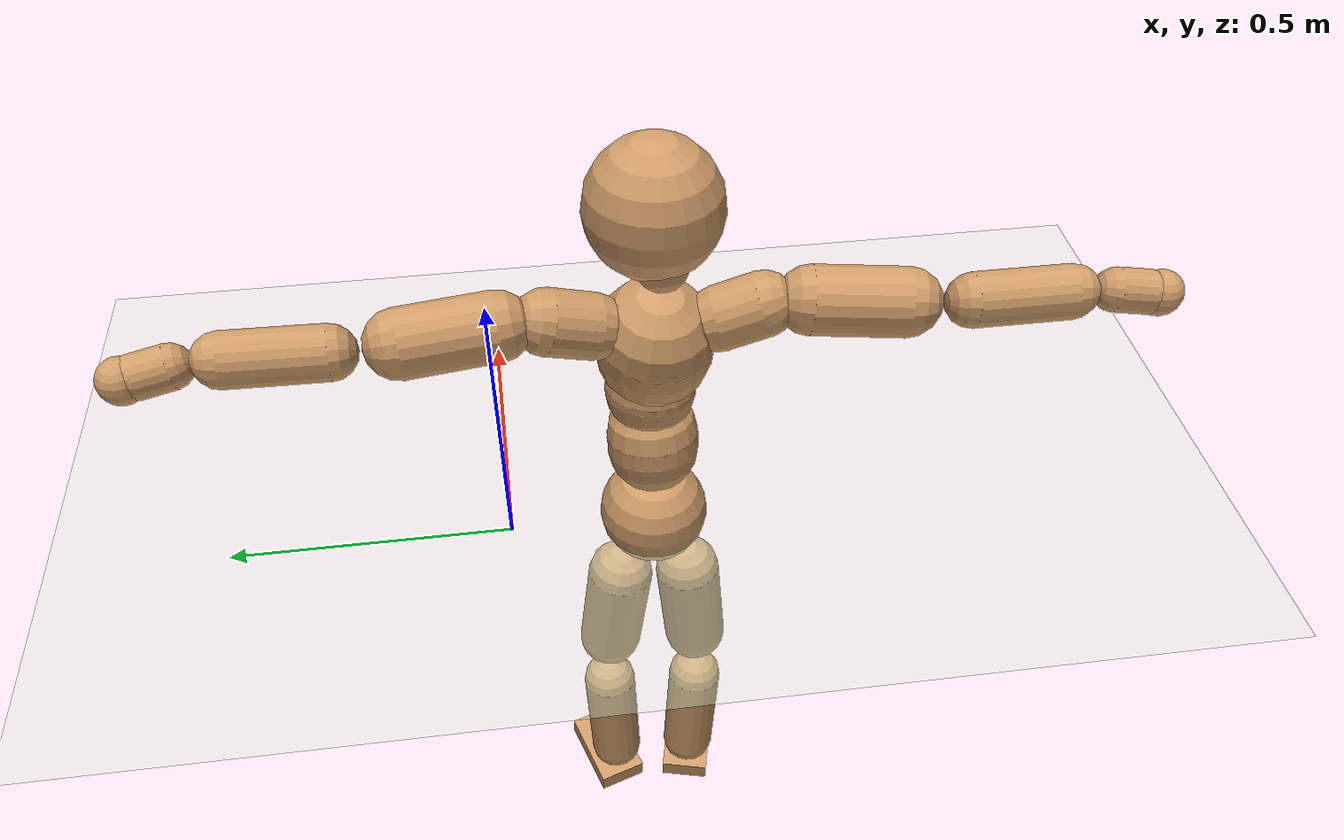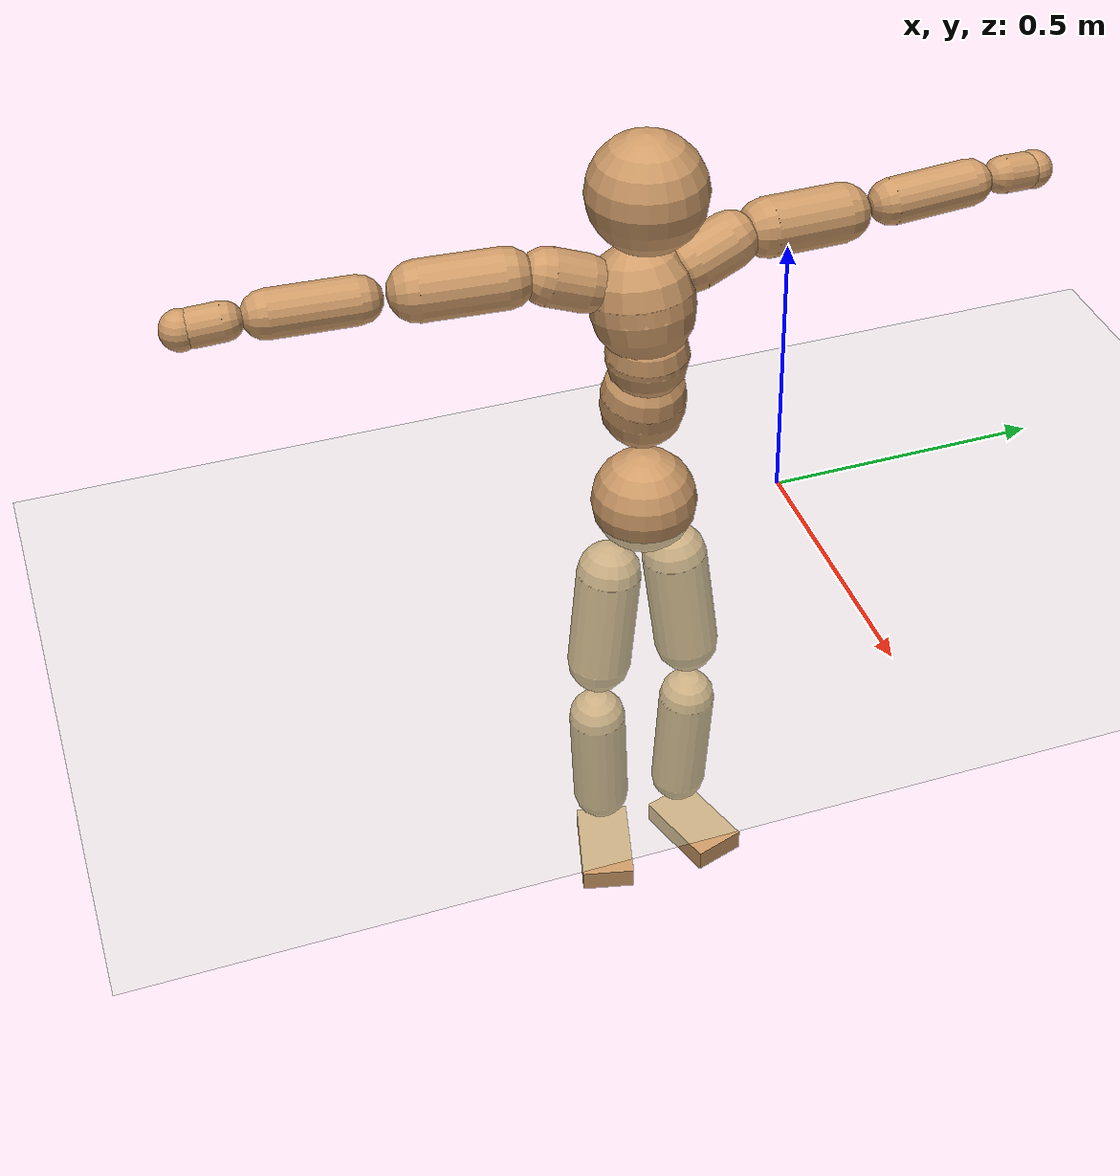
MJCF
<mujoco model="humanoid">
  <compiler coordinate="local"/>
  <default>
    <joint damping="0.0" armature="0.01" stiffness="0.0" limited="true"/>
    <geom conaffinity="1" condim="3" contype="7" margin="0.001" rgba="0.8 0.6 .4 1"/>
  </default>
  <asset>
    <texture type="skybox" builtin="gradient" rgb1=".4 .5 .6" rgb2="0 0 0" width="100" height="100"/>
    <texture builtin="flat" height="1278" mark="cross" markrgb="1 1 1" name="texgeom" random="0.01" rgb1="0.8 0.6 0.4" rgb2="0.8 0.6 0.4" type="cube" width="127"/>
    <texture builtin="checker" height="100" name="texplane" rgb1="0 0 0" rgb2="0.8 0.8 0.8" type="2d" width="100"/>
    <material name="MatPlane" reflectance="0.5" shininess="1" specular="1" texrepeat="60 60" texture="texplane"/>
    <material name="geom" texture="texgeom" texuniform="true"/>
  </asset>
  <worldbody>
    <light cutoff="100" diffuse="1 1 1" dir="-0 0 -1.3" directional="true" exponent="1" pos="0 0 1.3" specular=".1 .1 .1"/>
    <geom conaffinity="1" condim="3" name="floor" pos="0 0 0" rgba="0.8 0.9 0.8 1" size="100 100 .2" type="plane" material="MatPlane"/>
    <body name="Pelvis" pos="-0.0047 -0.2564 0.0272">
      <freejoint name="Pelvis"/>
      <geom type="sphere" contype="1" conaffinity="1" density="500" size="0.0960" pos="0.0000 0.0000 0.0000" name="Pelvis"/>
      <body name="L_Hip" pos="-0.0164 0.0557 -0.0825">
        <joint name="L_Hip_x" type="hinge" pos="0 0 0" axis="1 0 0" stiffness="800" damping="80" armature="0.02" range="-180.0000 180.0000"/>
        <joint name="L_Hip_y" type="hinge" pos="0 0 0" axis="0 1 0" stiffness="800" damping="80" armature="0.02" range="-180.0000 180.0000"/>
        <joint name="L_Hip_z" type="hinge" pos="0 0 0" axis="0 0 1" stiffness="800" damping="80" armature="0.02" range="-180.0000 180.0000"/>
        <geom type="capsule" contype="1" conaffinity="1" density="500" fromto="0.0025 0.0076 -0.0714 0.0099 0.0304 -0.2854" size="0.0603" name="L_Hip"/>
        <body name="L_Knee" pos="0.0123 0.038 -0.3568">
          <joint name="L_Knee_x" type="hinge" pos="0 0 0" axis="1 0 0" stiffness="800" damping="80" armature="0.02" range="-180.0000 180.0000"/>
          <joint name="L_Knee_y" type="hinge" pos="0 0 0" axis="0 1 0" stiffness="800" damping="80" armature="0.02" range="-180.0000 180.0000"/>
          <joint name="L_Knee_z" type="hinge" pos="0 0 0" axis="0 0 1" stiffness="800" damping="80" armature="0.02" range="-180.0000 180.0000"/>
          <geom type="capsule" contype="1" conaffinity="1" density="500" fromto="-0.0072 -0.0029 -0.0782 -0.0290 -0.0115 -0.3126" size="0.0534" name="L_Knee"/>
          <body name="L_Ankle" pos="-0.0362 -0.0144 -0.3908">
            <joint name="L_Ankle_x" type="hinge" pos="0 0 0" axis="1 0 0" stiffness="800" damping="80" armature="0.02" range="-180.0000 180.0000"/>
            <joint name="L_Ankle_y" type="hinge" pos="0 0 0" axis="0 1 0" stiffness="800" damping="80" armature="0.02" range="-180.0000 180.0000"/>
            <joint name="L_Ankle_z" type="hinge" pos="0 0 0" axis="0 0 1" stiffness="800" damping="80" armature="0.02" range="-180.0000 180.0000"/>
            <geom type="box" contype="1" conaffinity="1" density="500" pos="0.0590 0.0188 -0.0284" size="0.0863 0.0501 0.0211" quat="0.9881 0.0000 0.0000 0.1539" name="L_Ankle"/>
            <body name="L_Toe" pos="0.1181 0.0377 -0.0569">
              <joint name="L_Toe_x" type="hinge" pos="0 0 0" axis="1 0 0" stiffness="500" damping="50" armature="0.02" range="-180.0000 180.0000"/>
              <joint name="L_Toe_y" type="hinge" pos="0 0 0" axis="0 1 0" stiffness="500" damping="50" armature="0.02" range="-180.0000 180.0000"/>
              <joint name="L_Toe_z" type="hinge" pos="0 0 0" axis="0 0 1" stiffness="500" damping="50" armature="0.02" range="-180.0000 180.0000"/>
              <geom type="box" contype="1" conaffinity="1" density="500" pos="0.0000 0.0000 0.0274" size="0.0011 0.0025 0.001" quat="0.9873 0.0000 0.0000 0.1589" name="L_Toe"/>
            </body>
          </body>
        </body>
      </body>
      <body name="R_Hip" pos="-0.0113 -0.0571 -0.0912">
        <joint name="R_Hip_x" type="hinge" pos="0 0 0" axis="1 0 0" stiffness="800" damping="80" armature="0.02" range="-180.0000 180.0000"/>
        <joint name="R_Hip_y" type="hinge" pos="0 0 0" axis="0 1 0" stiffness="800" damping="80" armature="0.02" range="-180.0000 180.0000"/>
        <joint name="R_Hip_z" type="hinge" pos="0 0 0" axis="0 0 1" stiffness="800" damping="80" armature="0.02" range="-180.0000 180.0000"/>
        <geom type="capsule" contype="1" conaffinity="1" density="500" fromto="-0.0001 -0.0075 -0.0706 -0.0005 -0.0299 -0.2824" size="0.0597" name="R_Hip"/>
        <body name="R_Knee" pos="-0.0006 -0.0374 -0.353">
          <joint name="R_Knee_x" type="hinge" pos="0 0 0" axis="1 0 0" stiffness="800" damping="80" armature="0.02" range="-180.0000 180.0000"/>
          <joint name="R_Knee_y" type="hinge" pos="0 0 0" axis="0 1 0" stiffness="800" damping="80" armature="0.02" range="-180.0000 180.0000"/>
          <joint name="R_Knee_z" type="hinge" pos="0 0 0" axis="0 0 1" stiffness="800" damping="80" armature="0.02" range="-180.0000 180.0000"/>
          <geom type="capsule" contype="1" conaffinity="1" density="500" fromto="-0.0069 0.0036 -0.0766 -0.0274 0.0145 -0.3065" size="0.0538" name="R_Knee"/>
          <body name="R_Ankle" pos="-0.0343 0.0182 -0.3831">
            <joint name="R_Ankle_x" type="hinge" pos="0 0 0" axis="1 0 0" stiffness="800" damping="80" armature="0.02" range="-180.0000 180.0000"/>
            <joint name="R_Ankle_y" type="hinge" pos="0 0 0" axis="0 1 0" stiffness="800" damping="80" armature="0.02" range="-180.0000 180.0000"/>
            <joint name="R_Ankle_z" type="hinge" pos="0 0 0" axis="0 0 1" stiffness="800" damping="80" armature="0.02" range="-180.0000 180.0000"/>
            <geom type="box" contype="1" conaffinity="1" density="500" pos="0.0636 -0.0156 -0.0279" size="0.0886 0.0501 0.0208" quat="0.9928 0.0000 0.0000 -0.1199" name="R_Ankle"/>
            <body name="R_Toe" pos="0.1273 -0.0312 -0.0558">
              <joint name="R_Toe_x" type="hinge" pos="0 0 0" axis="1 0 0" stiffness="500" damping="50" armature="0.02" range="-180.0000 180.0000"/>
              <joint name="R_Toe_y" type="hinge" pos="0 0 0" axis="0 1 0" stiffness="500" damping="50" armature="0.02" range="-180.0000 180.0000"/>
              <joint name="R_Toe_z" type="hinge" pos="0 0 0" axis="0 0 1" stiffness="500" damping="50" armature="0.02" range="-180.0000 180.0000"/>
              <geom type="box" contype="1" conaffinity="1" density="500" pos="0.0000 0.0000 0.0290" size="0.001 0.0025 0.0011" quat="0.9938 0.0000 0.0000 -0.1108" name="R_Toe"/>
            </body>
          </body>
        </body>
      </body>
      <body name="Torso" pos="-0.0382 0.004 0.127">
        <joint name="Torso_x" type="hinge" pos="0 0 0" axis="1 0 0" stiffness="1000" damping="100" armature="0.02" range="-180.0000 180.0000"/>
        <joint name="Torso_y" type="hinge" pos="0 0 0" axis="0 1 0" stiffness="1000" damping="100" armature="0.02" range="-180.0000 180.0000"/>
        <joint name="Torso_z" type="hinge" pos="0 0 0" axis="0 0 1" stiffness="1000" damping="100" armature="0.02" range="-180.0000 180.0000"/>
        <geom type="capsule" contype="1" conaffinity="1" density="500" fromto="0.0168 0.0037 0.0882 0.0112 0.0025 0.0588" size="0.075888" name="Torso"/>
        <body name="Spine" pos="0.0281 0.0062 0.147">
          <joint name="Spine_x" type="hinge" pos="0 0 0" axis="1 0 0" stiffness="1000" damping="100" armature="0.02" range="-180.0000 180.0000"/>
          <joint name="Spine_y" type="hinge" pos="0 0 0" axis="0 1 0" stiffness="1000" damping="100" armature="0.02" range="-180.0000 180.0000"/>
          <joint name="Spine_z" type="hinge" pos="0 0 0" axis="0 0 1" stiffness="1000" damping="100" armature="0.02" range="-180.0000 180.0000"/>
          <geom type="capsule" contype="1" conaffinity="1" density="500" fromto="0.0024 -0.0009 0.0359 0.0016 -0.0006 0.0239" size="0.07347" name="Spine"/>
          <body name="Chest" pos="0.004 -0.0015 0.0598">
            <joint name="Chest_x" type="hinge" pos="0 0 0" axis="1 0 0" stiffness="1000" damping="100" armature="0.02" range="-180.0000 180.0000"/>
            <joint name="Chest_y" type="hinge" pos="0 0 0" axis="0 1 0" stiffness="1000" damping="100" armature="0.02" range="-180.0000 180.0000"/>
            <joint name="Chest_z" type="hinge" pos="0 0 0" axis="0 0 1" stiffness="1000" damping="100" armature="0.02" range="-180.0000 180.0000"/>
            <geom type="capsule" contype="1" conaffinity="1" density="500" fromto="-0.0170 -0.0046 0.0855 -0.0114 -0.0031 0.0570" size="0.091791" name="Chest"/>
            <body name="Neck" pos="-0.037 -0.0128 0.2067">
              <joint name="Neck_x" type="hinge" pos="0 0 0" axis="1 0 0" stiffness="500" damping="50" armature="0.02" range="-180.0000 180.0000"/>
              <joint name="Neck_y" type="hinge" pos="0 0 0" axis="0 1 0" stiffness="500" damping="50" armature="0.02" range="-180.0000 180.0000"/>
              <joint name="Neck_z" type="hinge" pos="0 0 0" axis="0 0 1" stiffness="500" damping="50" armature="0.02" range="-180.0000 180.0000"/>
              <geom type="capsule" contype="1" conaffinity="1" density="500" fromto="0.0096 0.0019 0.0171 0.0386 0.0075 0.0684" size="0.041571" name="Neck"/>
              <body name="Head" pos="0.0482 0.0094 0.0855">
                <joint name="Head_x" type="hinge" pos="0 0 0" axis="1 0 0" stiffness="500" damping="50" armature="0.02" range="-180.0000 180.0000"/>
                <joint name="Head_y" type="hinge" pos="0 0 0" axis="0 1 0" stiffness="500" damping="50" armature="0.02" range="-180.0000 180.0000"/>
                <joint name="Head_z" type="hinge" pos="0 0 0" axis="0 0 1" stiffness="500" damping="50" armature="0.02" range="-180.0000 180.0000"/>
                <geom type="sphere" contype="1" conaffinity="1" density="500" size="0.1037" pos="0.0000 0.0000 0.0000" name="Head"/>
              </body>
            </body>
            <body name="L_Thorax" pos="-0.0217 0.0667 0.1115">
              <joint name="L_Thorax_x" type="hinge" pos="0 0 0" axis="1 0 0" stiffness="500" damping="50" armature="0.02" range="-180.0000 180.0000"/>
              <joint name="L_Thorax_y" type="hinge" pos="0 0 0" axis="0 1 0" stiffness="500" damping="50" armature="0.02" range="-180.0000 180.0000"/>
              <joint name="L_Thorax_z" type="hinge" pos="0 0 0" axis="0 0 1" stiffness="500" damping="50" armature="0.02" range="-180.0000 180.0000"/>
              <geom type="capsule" contype="1" conaffinity="1" density="500" fromto="-0.0036 0.0235 0.0080 -0.0143 0.0941 0.0322" size="0.0508" name="L_Thorax"/>
              <body name="L_Shoulder" pos="-0.0179 0.1176 0.0402">
                <joint name="L_Shoulder_x" type="hinge" pos="0 0 0" axis="1 0 0" stiffness="500" damping="50" armature="0.02" range="-720.0000 720.0000"/>
                <joint name="L_Shoulder_y" type="hinge" pos="0 0 0" axis="0 1 0" stiffness="500" damping="50" armature="0.02" range="-720.0000 720.0000"/>
                <joint name="L_Shoulder_z" type="hinge" pos="0 0 0" axis="0 0 1" stiffness="500" damping="50" armature="0.02" range="-720.0000 720.0000"/>
                <geom type="capsule" contype="1" conaffinity="1" density="500" fromto="-0.0043 0.0471 -0.0022 -0.0170 0.1882 -0.0088" size="0.053" name="L_Shoulder"/>
                <body name="L_Elbow" pos="-0.0213 0.2353 -0.011">
                  <joint name="L_Elbow_x" type="hinge" pos="0 0 0" axis="1 0 0" stiffness="500" damping="50" armature="0.02" range="-720.0000 720.0000"/>
                  <joint name="L_Elbow_y" type="hinge" pos="0 0 0" axis="0 1 0" stiffness="500" damping="50" armature="0.02" range="-720.0000 720.0000"/>
                  <joint name="L_Elbow_z" type="hinge" pos="0 0 0" axis="0 0 1" stiffness="500" damping="50" armature="0.02" range="-720.0000 720.0000"/>
                  <geom type="capsule" contype="1" conaffinity="1" density="500" fromto="-0.0016 0.0500 0.0022 -0.0063 0.1999 0.0087" size="0.0417" name="L_Elbow"/>
                  <body name="L_Wrist" pos="-0.0079 0.2499 0.0109">
                    <joint name="L_Wrist_x" type="hinge" pos="0 0 0" axis="1 0 0" stiffness="300" damping="30" armature="0.02" range="-180.0000 180.0000"/>
                    <joint name="L_Wrist_y" type="hinge" pos="0 0 0" axis="0 1 0" stiffness="300" damping="30" armature="0.02" range="-180.0000 180.0000"/>
                    <joint name="L_Wrist_z" type="hinge" pos="0 0 0" axis="0 0 1" stiffness="300" damping="30" armature="0.02" range="-180.0000 180.0000"/>
                    <geom type="capsule" contype="1" conaffinity="1" density="500" fromto="-0.0030 0.0169 -0.0021 -0.0120 0.0677 -0.0083" size="0.0336" name="L_Wrist"/>
                    <body name="L_Hand" pos="-0.0151 0.0847 -0.0103">
                      <joint name="L_Hand_x" type="hinge" pos="0 0 0" axis="1 0 0" stiffness="300" damping="30" armature="0.02" range="-180.0000 180.0000"/>
                      <joint name="L_Hand_y" type="hinge" pos="0 0 0" axis="0 1 0" stiffness="300" damping="30" armature="0.02" range="-180.0000 180.0000"/>
                      <joint name="L_Hand_z" type="hinge" pos="0 0 0" axis="0 0 1" stiffness="300" damping="30" armature="0.02" range="-180.0000 180.0000"/>
                      <geom type="sphere" contype="1" conaffinity="1" density="500" size="0.0348" pos="0.0000 0.0000 0.0000" name="L_Hand"/>
                    </body>
                  </body>
                </body>
              </body>
            </body>
            <body name="R_Thorax" pos="-0.0265 -0.0772 0.1091">
              <joint name="R_Thorax_x" type="hinge" pos="0 0 0" axis="1 0 0" stiffness="500" damping="50" armature="0.02" range="-180.0000 180.0000"/>
              <joint name="R_Thorax_y" type="hinge" pos="0 0 0" axis="0 1 0" stiffness="500" damping="50" armature="0.02" range="-180.0000 180.0000"/>
              <joint name="R_Thorax_z" type="hinge" pos="0 0 0" axis="0 0 1" stiffness="500" damping="50" armature="0.02" range="-180.0000 180.0000"/>
              <geom type="capsule" contype="1" conaffinity="1" density="500" fromto="-0.0016 -0.0214 0.0080 -0.0064 -0.0857 0.0319" size="0.0505" name="R_Thorax"/>
              <body name="R_Shoulder" pos="-0.008 -0.1072 0.0399">
                <joint name="R_Shoulder_x" type="hinge" pos="0 0 0" axis="1 0 0" stiffness="500" damping="50" armature="0.02" range="-720.0000 720.0000"/>
                <joint name="R_Shoulder_y" type="hinge" pos="0 0 0" axis="0 1 0" stiffness="500" damping="50" armature="0.02" range="-720.0000 720.0000"/>
                <joint name="R_Shoulder_z" type="hinge" pos="0 0 0" axis="0 0 1" stiffness="500" damping="50" armature="0.02" range="-720.0000 720.0000"/>
                <geom type="capsule" contype="1" conaffinity="1" density="500" fromto="-0.0060 -0.0476 -0.0016 -0.0239 -0.1905 -0.0065" size="0.053" name="R_Shoulder"/>
                <body name="R_Elbow" pos="-0.0299 -0.2382 -0.0081">
                  <joint name="R_Elbow_x" type="hinge" pos="0 0 0" axis="1 0 0" stiffness="500" damping="50" armature="0.02" range="-720.0000 720.0000"/>
                  <joint name="R_Elbow_y" type="hinge" pos="0 0 0" axis="0 1 0" stiffness="500" damping="50" armature="0.02" range="-720.0000 720.0000"/>
                  <joint name="R_Elbow_z" type="hinge" pos="0 0 0" axis="0 0 1" stiffness="500" damping="50" armature="0.02" range="-720.0000 720.0000"/>
                  <geom type="capsule" contype="1" conaffinity="1" density="500" fromto="-0.0012 -0.0502 0.0011 -0.0047 -0.2009 0.0044" size="0.0419" name="R_Elbow"/>
                  <body name="R_Wrist" pos="-0.0059 -0.2511 0.0055">
                    <joint name="R_Wrist_x" type="hinge" pos="0 0 0" axis="1 0 0" stiffness="300" damping="30" armature="0.02" range="-180.0000 180.0000"/>
                    <joint name="R_Wrist_y" type="hinge" pos="0 0 0" axis="0 1 0" stiffness="300" damping="30" armature="0.02" range="-180.0000 180.0000"/>
                    <joint name="R_Wrist_z" type="hinge" pos="0 0 0" axis="0 0 1" stiffness="300" damping="30" armature="0.02" range="-180.0000 180.0000"/>
                    <geom type="capsule" contype="1" conaffinity="1" density="500" fromto="-0.0019 -0.0172 -0.0017 -0.0077 -0.0688 -0.0067" size="0.0339" name="R_Wrist"/>
                    <body name="R_Hand" pos="-0.0096 -0.086 -0.0083">
                      <joint name="R_Hand_x" type="hinge" pos="0 0 0" axis="1 0 0" stiffness="300" damping="30" armature="0.02" range="-180.0000 180.0000"/>
                      <joint name="R_Hand_y" type="hinge" pos="0 0 0" axis="0 1 0" stiffness="300" damping="30" armature="0.02" range="-180.0000 180.0000"/>
                      <joint name="R_Hand_z" type="hinge" pos="0 0 0" axis="0 0 1" stiffness="300" damping="30" armature="0.02" range="-180.0000 180.0000"/>
                      <geom type="sphere" contype="1" conaffinity="1" density="500" size="0.0350" pos="0.0000 0.0000 0.0000" name="R_Hand"/>
                    </body>
                  </body>
                </body>
              </body>
            </body>
          </body>
        </body>
      </body>
    </body>
  </worldbody>
  <actuator>
    <motor name="L_Hip_x" joint="L_Hip_x" gear="500"/>
    <motor name="L_Hip_y" joint="L_Hip_y" gear="500"/>
    <motor name="L_Hip_z" joint="L_Hip_z" gear="500"/>
    <motor name="L_Knee_x" joint="L_Knee_x" gear="500"/>
    <motor name="L_Knee_y" joint="L_Knee_y" gear="500"/>
    <motor name="L_Knee_z" joint="L_Knee_z" gear="500"/>
    <motor name="L_Ankle_x" joint="L_Ankle_x" gear="500"/>
    <motor name="L_Ankle_y" joint="L_Ankle_y" gear="500"/>
    <motor name="L_Ankle_z" joint="L_Ankle_z" gear="500"/>
    <motor name="L_Toe_x" joint="L_Toe_x" gear="500"/>
    <motor name="L_Toe_y" joint="L_Toe_y" gear="500"/>
    <motor name="L_Toe_z" joint="L_Toe_z" gear="500"/>
    <motor name="R_Hip_x" joint="R_Hip_x" gear="500"/>
    <motor name="R_Hip_y" joint="R_Hip_y" gear="500"/>
    <motor name="R_Hip_z" joint="R_Hip_z" gear="500"/>
    <motor name="R_Knee_x" joint="R_Knee_x" gear="500"/>
    <motor name="R_Knee_y" joint="R_Knee_y" gear="500"/>
    <motor name="R_Knee_z" joint="R_Knee_z" gear="500"/>
    <motor name="R_Ankle_x" joint="R_Ankle_x" gear="500"/>
    <motor name="R_Ankle_y" joint="R_Ankle_y" gear="500"/>
    <motor name="R_Ankle_z" joint="R_Ankle_z" gear="500"/>
    <motor name="R_Toe_x" joint="R_Toe_x" gear="500"/>
    <motor name="R_Toe_y" joint="R_Toe_y" gear="500"/>
    <motor name="R_Toe_z" joint="R_Toe_z" gear="500"/>
    <motor name="Torso_x" joint="Torso_x" gear="500"/>
    <motor name="Torso_y" joint="Torso_y" gear="500"/>
    <motor name="Torso_z" joint="Torso_z" gear="500"/>
    <motor name="Spine_x" joint="Spine_x" gear="500"/>
    <motor name="Spine_y" joint="Spine_y" gear="500"/>
    <motor name="Spine_z" joint="Spine_z" gear="500"/>
    <motor name="Chest_x" joint="Chest_x" gear="500"/>
    <motor name="Chest_y" joint="Chest_y" gear="500"/>
    <motor name="Chest_z" joint="Chest_z" gear="500"/>
    <motor name="Neck_x" joint="Neck_x" gear="500"/>
    <motor name="Neck_y" joint="Neck_y" gear="500"/>
    <motor name="Neck_z" joint="Neck_z" gear="500"/>
    <motor name="Head_x" joint="Head_x" gear="500"/>
    <motor name="Head_y" joint="Head_y" gear="500"/>
    <motor name="Head_z" joint="Head_z" gear="500"/>
    <motor name="L_Thorax_x" joint="L_Thorax_x" gear="500"/>
    <motor name="L_Thorax_y" joint="L_Thorax_y" gear="500"/>
    <motor name="L_Thorax_z" joint="L_Thorax_z" gear="500"/>
    <motor name="L_Shoulder_x" joint="L_Shoulder_x" gear="500"/>
    <motor name="L_Shoulder_y" joint="L_Shoulder_y" gear="500"/>
    <motor name="L_Shoulder_z" joint="L_Shoulder_z" gear="500"/>
    <motor name="L_Elbow_x" joint="L_Elbow_x" gear="500"/>
    <motor name="L_Elbow_y" joint="L_Elbow_y" gear="500"/>
    <motor name="L_Elbow_z" joint="L_Elbow_z" gear="500"/>
    <motor name="L_Wrist_x" joint="L_Wrist_x" gear="500"/>
    <motor name="L_Wrist_y" joint="L_Wrist_y" gear="500"/>
    <motor name="L_Wrist_z" joint="L_Wrist_z" gear="500"/>
    <motor name="L_Hand_x" joint="L_Hand_x" gear="500"/>
    <motor name="L_Hand_y" joint="L_Hand_y" gear="500"/>
    <motor name="L_Hand_z" joint="L_Hand_z" gear="500"/>
    <motor name="R_Thorax_x" joint="R_Thorax_x" gear="500"/>
    <motor name="R_Thorax_y" joint="R_Thorax_y" gear="500"/>
    <motor name="R_Thorax_z" joint="R_Thorax_z" gear="500"/>
    <motor name="R_Shoulder_x" joint="R_Shoulder_x" gear="500"/>
    <motor name="R_Shoulder_y" joint="R_Shoulder_y" gear="500"/>
    <motor name="R_Shoulder_z" joint="R_Shoulder_z" gear="500"/>
    <motor name="R_Elbow_x" joint="R_Elbow_x" gear="500"/>
    <motor name="R_Elbow_y" joint="R_Elbow_y" gear="500"/>
    <motor name="R_Elbow_z" joint="R_Elbow_z" gear="500"/>
    <motor name="R_Wrist_x" joint="R_Wrist_x" gear="500"/>
    <motor name="R_Wrist_y" joint="R_Wrist_y" gear="500"/>
    <motor name="R_Wrist_z" joint="R_Wrist_z" gear="500"/>
    <motor name="R_Hand_x" joint="R_Hand_x" gear="500"/>
    <motor name="R_Hand_y" joint="R_Hand_y" gear="500"/>
    <motor name="R_Hand_z" joint="R_Hand_z" gear="500"/>
  </actuator>
  <contact>
    <exclude body1="Torso" body2="Chest"/>
    <exclude body1="Head" body2="Chest"/>
    <exclude body1="R_Knee" body2="R_Toe"/>
    <exclude body1="R_Knee" body2="L_Ankle"/>
    <exclude body1="R_Knee" body2="L_Toe"/>
    <exclude body1="L_Knee" body2="L_Toe"/>
    <exclude body1="L_Knee" body2="R_Ankle"/>
    <exclude body1="L_Knee" body2="R_Toe"/>
    <exclude body1="L_Shoulder" body2="Chest"/>
    <exclude body1="R_Shoulder" body2="Chest"/>
  </contact>
  <sensor/>
  <size njmax="700" nconmax="700"/>
</mujoco>
